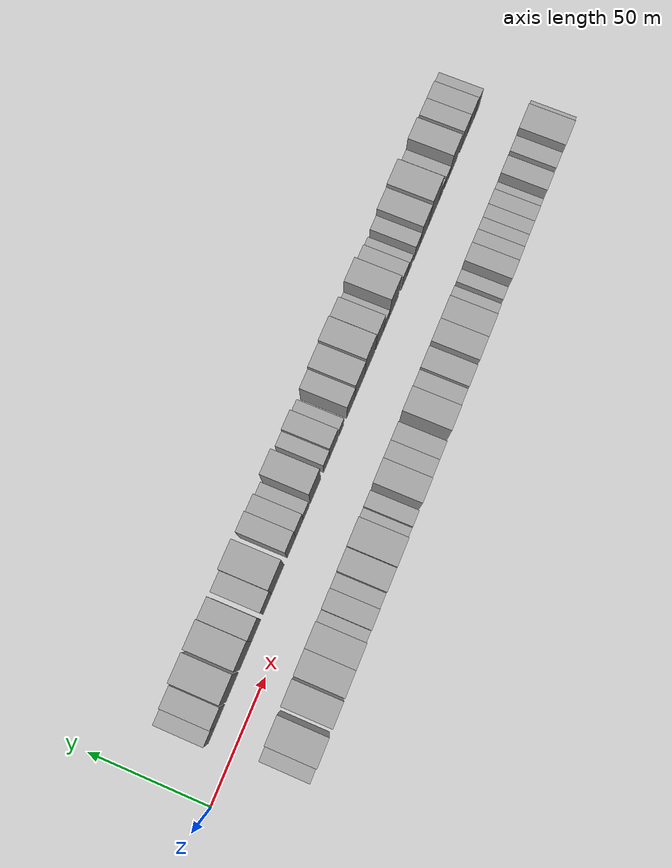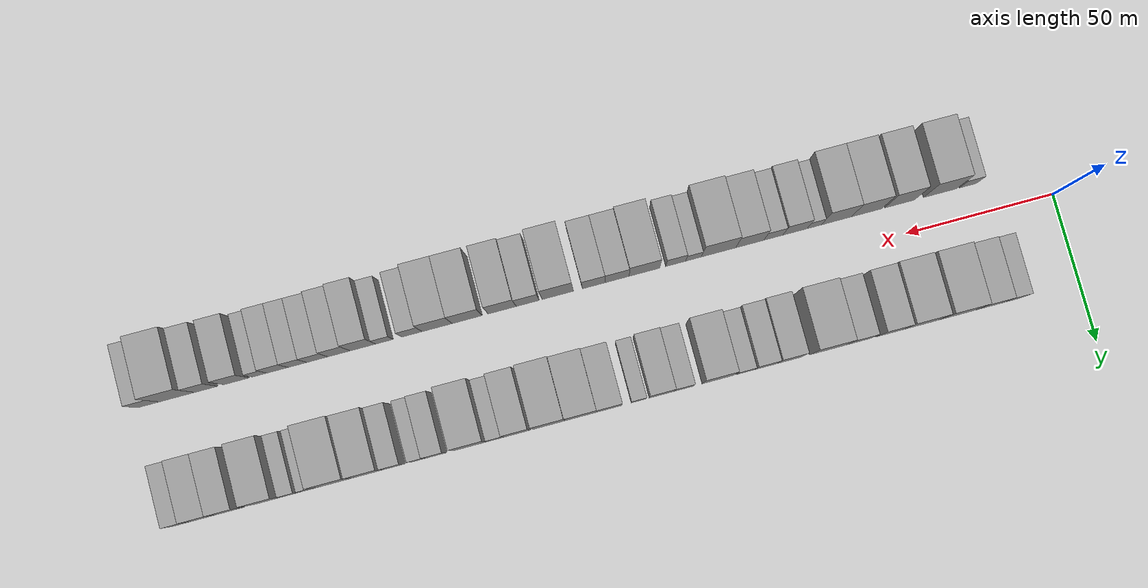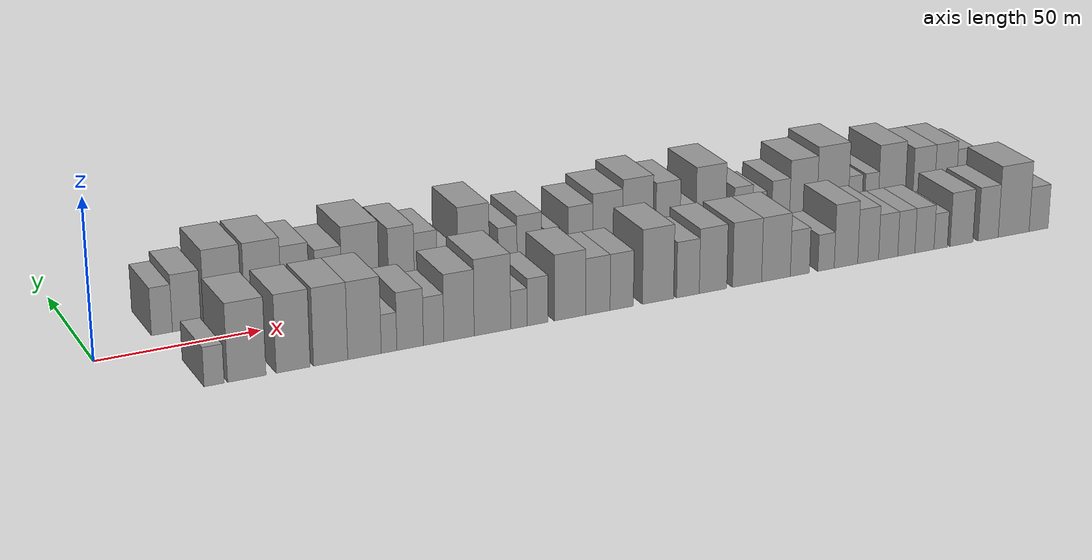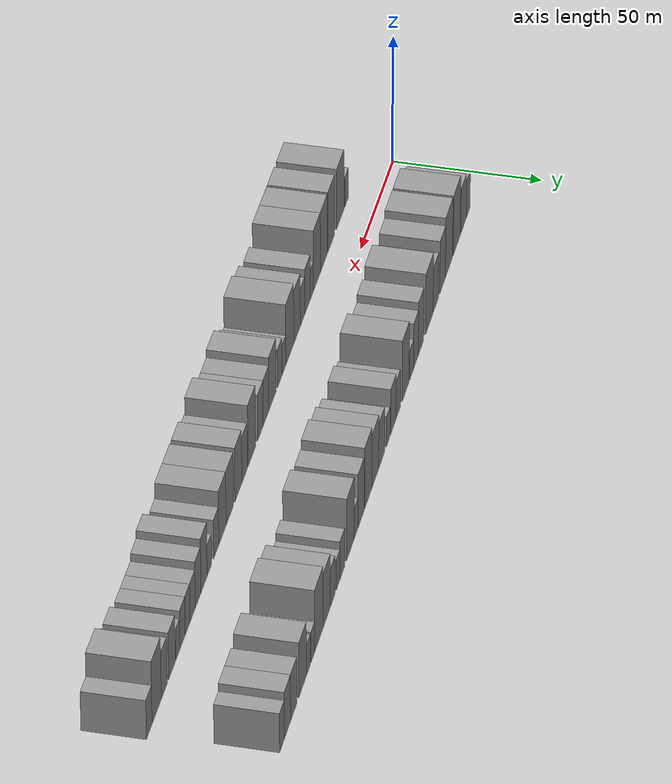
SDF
<sdf version="1.6">
 <world name="default">
  <scene>
   <sky><clouds><speed>12</speed></clouds></sky>
   <ambient>0.4 0.4 0.4 1</ambient>
   <background>0.7 0.7 0.7 1</background>
   <shadows>1</shadows>
  </scene>
  <gravity>0 0 -9.8066</gravity>
  <magnetic_field>6e-06 2.3e-05 -4.2e-05</magnetic_field>
  <physics default="0" name="default_physics" type="ode">
   <ode>
    <solver>
     <type>quick</type>
     <iters>10</iters>
     <sor>1.0</sor>
     <use_dynamic_moi_rescaling>0</use_dynamic_moi_rescaling>
    </solver>
    <constraints>
     <cfm>0</cfm>
     <erp>0.2</erp>
     <contact_max_correcting_vel>100</contact_max_correcting_vel>
     <contact_surface_layer>0.001</contact_surface_layer>
    </constraints>
   </ode>
   <max_step_size>0.004</max_step_size>
   <real_time_factor>1</real_time_factor>
   <real_time_update_rate>250</real_time_update_rate>
  </physics>
  <light name="sun" type="directional">
   <pose>0 0 10 0 0 0</pose>
   <diffuse>0.8 0.8 0.8 1</diffuse>
   <specular>0.2 0.2 0.2 1</specular>
   <attenuation>
    <range>1000</range>
    <constant>0.9</constant>
    <linear>0.01</linear>
    <quadratic>0.001</quadratic>
   </attenuation>
   <direction>-0.5 0.1 -0.9</direction>
  </light>
  <model name="building_1">
   <static>1</static>
   <pose>23.1855 20.0000 0 0.000000 0.000000 1.570796</pose>
   <link name="link">
    <pose>0 0 7.50 0 0 0</pose>
    <collision name="collision"><geometry><box><size>20.0000 6.3709 15.0000</size></box></geometry></collision>
    <visual name="visual">
     <cast_shadows>0</cast_shadows>
     <geometry><box><size>20.0000 6.3709 15.0000</size></box></geometry>
     <material>
      <script>
       <uri>model://grey_wall/materials/scripts</uri>
       <uri>model://grey_wall/materials/textures</uri>
       <name>vrc/grey_wall</name>
      </script>
     </material>
    </visual>
   </link>
  </model>
  <model name="building_2">
   <static>1</static>
   <pose>30.7351 20.0000 0 0.000000 0.000000 1.570796</pose>
   <link name="link">
    <pose>0 0 9.00 0 0 0</pose>
    <collision name="collision"><geometry><box><size>20.0000 8.7284 18.0000</size></box></geometry></collision>
    <visual name="visual">
     <cast_shadows>0</cast_shadows>
     <geometry><box><size>20.0000 8.7284 18.0000</size></box></geometry>
     <material>
      <script>
       <uri>model://grey_wall/materials/scripts</uri>
       <uri>model://grey_wall/materials/textures</uri>
       <name>vrc/grey_wall</name>
      </script>
     </material>
    </visual>
   </link>
  </model>
  <model name="building_3">
   <static>1</static>
   <pose>41.8716 20.0000 0 0.000000 0.000000 1.570796</pose>
   <link name="link">
    <pose>0 0 12.00 0 0 0</pose>
    <collision name="collision"><geometry><box><size>20.0000 11.5447 24.0000</size></box></geometry></collision>
    <visual name="visual">
     <cast_shadows>0</cast_shadows>
     <geometry><box><size>20.0000 11.5447 24.0000</size></box></geometry>
     <material>
      <script>
       <uri>model://grey_wall/materials/scripts</uri>
       <uri>model://grey_wall/materials/textures</uri>
       <name>vrc/grey_wall</name>
      </script>
     </material>
    </visual>
   </link>
  </model>
  <model name="building_4">
   <static>1</static>
   <pose>54.3600 20.0000 0 0.000000 0.000000 1.570796</pose>
   <link name="link">
    <pose>0 0 12.00 0 0 0</pose>
    <collision name="collision"><geometry><box><size>20.0000 11.4320 24.0000</size></box></geometry></collision>
    <visual name="visual">
     <cast_shadows>0</cast_shadows>
     <geometry><box><size>20.0000 11.4320 24.0000</size></box></geometry>
     <material>
      <script>
       <uri>model://grey_wall/materials/scripts</uri>
       <uri>model://grey_wall/materials/textures</uri>
       <name>vrc/grey_wall</name>
      </script>
     </material>
    </visual>
   </link>
  </model>
  <model name="building_5">
   <static>1</static>
   <pose>64.4766 20.0000 0 0.000000 0.000000 1.570796</pose>
   <link name="link">
    <pose>0 0 10.50 0 0 0</pose>
    <collision name="collision"><geometry><box><size>20.0000 8.8012 21.0000</size></box></geometry></collision>
    <visual name="visual">
     <cast_shadows>0</cast_shadows>
     <geometry><box><size>20.0000 8.8012 21.0000</size></box></geometry>
     <material>
      <script>
       <uri>model://grey_wall/materials/scripts</uri>
       <uri>model://grey_wall/materials/textures</uri>
       <name>vrc/grey_wall</name>
      </script>
     </material>
    </visual>
   </link>
  </model>
  <model name="building_6">
   <static>1</static>
   <pose>75.0676 20.0000 0 0.000000 0.000000 1.570796</pose>
   <link name="link">
    <pose>0 0 9.00 0 0 0</pose>
    <collision name="collision"><geometry><box><size>20.0000 8.3809 18.0000</size></box></geometry></collision>
    <visual name="visual">
     <cast_shadows>0</cast_shadows>
     <geometry><box><size>20.0000 8.3809 18.0000</size></box></geometry>
     <material>
      <script>
       <uri>model://grey_wall/materials/scripts</uri>
       <uri>model://grey_wall/materials/textures</uri>
       <name>vrc/grey_wall</name>
      </script>
     </material>
    </visual>
   </link>
  </model>
  <model name="building_7">
   <static>1</static>
   <pose>85.2413 20.0000 0 0.000000 0.000000 1.570796</pose>
   <link name="link">
    <pose>0 0 12.00 0 0 0</pose>
    <collision name="collision"><geometry><box><size>20.0000 11.9665 24.0000</size></box></geometry></collision>
    <visual name="visual">
     <cast_shadows>0</cast_shadows>
     <geometry><box><size>20.0000 11.9665 24.0000</size></box></geometry>
     <material>
      <script>
       <uri>model://grey_wall/materials/scripts</uri>
       <uri>model://grey_wall/materials/textures</uri>
       <name>vrc/grey_wall</name>
      </script>
     </material>
    </visual>
   </link>
  </model>
  <model name="building_8">
   <static>1</static>
   <pose>98.4299 20.0000 0 0.000000 0.000000 1.570796</pose>
   <link name="link">
    <pose>0 0 10.50 0 0 0</pose>
    <collision name="collision"><geometry><box><size>20.0000 8.4107 21.0000</size></box></geometry></collision>
    <visual name="visual">
     <cast_shadows>0</cast_shadows>
     <geometry><box><size>20.0000 8.4107 21.0000</size></box></geometry>
     <material>
      <script>
       <uri>model://grey_wall/materials/scripts</uri>
       <uri>model://grey_wall/materials/textures</uri>
       <name>vrc/grey_wall</name>
      </script>
     </material>
    </visual>
   </link>
  </model>
  <model name="building_9">
   <static>1</static>
   <pose>106.3608 20.0000 0 0.000000 0.000000 1.570796</pose>
   <link name="link">
    <pose>0 0 9.00 0 0 0</pose>
    <collision name="collision"><geometry><box><size>20.0000 7.4511 18.0000</size></box></geometry></collision>
    <visual name="visual">
     <cast_shadows>0</cast_shadows>
     <geometry><box><size>20.0000 7.4511 18.0000</size></box></geometry>
     <material>
      <script>
       <uri>model://grey_wall/materials/scripts</uri>
       <uri>model://grey_wall/materials/textures</uri>
       <name>vrc/grey_wall</name>
      </script>
     </material>
    </visual>
   </link>
  </model>
  <model name="building_10">
   <static>1</static>
   <pose>113.0277 20.0000 0 0.000000 0.000000 1.570796</pose>
   <link name="link">
    <pose>0 0 6.00 0 0 0</pose>
    <collision name="collision"><geometry><box><size>20.0000 5.8827 12.0000</size></box></geometry></collision>
    <visual name="visual">
     <cast_shadows>0</cast_shadows>
     <geometry><box><size>20.0000 5.8827 12.0000</size></box></geometry>
     <material>
      <script>
       <uri>model://grey_wall/materials/scripts</uri>
       <uri>model://grey_wall/materials/textures</uri>
       <name>vrc/grey_wall</name>
      </script>
     </material>
    </visual>
   </link>
  </model>
  <model name="building_11">
   <static>1</static>
   <pose>122.2108 20.0000 0 0.000000 0.000000 1.570796</pose>
   <link name="link">
    <pose>0 0 12.00 0 0 0</pose>
    <collision name="collision"><geometry><box><size>20.0000 10.4834 24.0000</size></box></geometry></collision>
    <visual name="visual">
     <cast_shadows>0</cast_shadows>
     <geometry><box><size>20.0000 10.4834 24.0000</size></box></geometry>
     <material>
      <script>
       <uri>model://grey_wall/materials/scripts</uri>
       <uri>model://grey_wall/materials/textures</uri>
       <name>vrc/grey_wall</name>
      </script>
     </material>
    </visual>
   </link>
  </model>
  <model name="building_12">
   <static>1</static>
   <pose>133.6189 20.0000 0 0.000000 0.000000 1.570796</pose>
   <link name="link">
    <pose>0 0 7.50 0 0 0</pose>
    <collision name="collision"><geometry><box><size>20.0000 6.3327 15.0000</size></box></geometry></collision>
    <visual name="visual">
     <cast_shadows>0</cast_shadows>
     <geometry><box><size>20.0000 6.3327 15.0000</size></box></geometry>
     <material>
      <script>
       <uri>model://grey_wall/materials/scripts</uri>
       <uri>model://grey_wall/materials/textures</uri>
       <name>vrc/grey_wall</name>
      </script>
     </material>
    </visual>
   </link>
  </model>
  <model name="building_13">
   <static>1</static>
   <pose>140.9818 20.0000 0 0.000000 0.000000 1.570796</pose>
   <link name="link">
    <pose>0 0 9.00 0 0 0</pose>
    <collision name="collision"><geometry><box><size>20.0000 8.3931 18.0000</size></box></geometry></collision>
    <visual name="visual">
     <cast_shadows>0</cast_shadows>
     <geometry><box><size>20.0000 8.3931 18.0000</size></box></geometry>
     <material>
      <script>
       <uri>model://grey_wall/materials/scripts</uri>
       <uri>model://grey_wall/materials/textures</uri>
       <name>vrc/grey_wall</name>
      </script>
     </material>
    </visual>
   </link>
  </model>
  <model name="building_14">
   <static>1</static>
   <pose>148.6953 20.0000 0 0.000000 0.000000 1.570796</pose>
   <link name="link">
    <pose>0 0 6.00 0 0 0</pose>
    <collision name="collision"><geometry><box><size>20.0000 5.0339 12.0000</size></box></geometry></collision>
    <visual name="visual">
     <cast_shadows>0</cast_shadows>
     <geometry><box><size>20.0000 5.0339 12.0000</size></box></geometry>
     <material>
      <script>
       <uri>model://grey_wall/materials/scripts</uri>
       <uri>model://grey_wall/materials/textures</uri>
       <name>vrc/grey_wall</name>
      </script>
     </material>
    </visual>
   </link>
  </model>
  <model name="building_15">
   <static>1</static>
   <pose>158.4189 20.0000 0 0.000000 0.000000 1.570796</pose>
   <link name="link">
    <pose>0 0 9.00 0 0 0</pose>
    <collision name="collision"><geometry><box><size>20.0000 8.4132 18.0000</size></box></geometry></collision>
    <visual name="visual">
     <cast_shadows>0</cast_shadows>
     <geometry><box><size>20.0000 8.4132 18.0000</size></box></geometry>
     <material>
      <script>
       <uri>model://grey_wall/materials/scripts</uri>
       <uri>model://grey_wall/materials/textures</uri>
       <name>vrc/grey_wall</name>
      </script>
     </material>
    </visual>
   </link>
  </model>
  <model name="building_16">
   <static>1</static>
   <pose>167.8705 20.0000 0 0.000000 0.000000 1.570796</pose>
   <link name="link">
    <pose>0 0 10.50 0 0 0</pose>
    <collision name="collision"><geometry><box><size>20.0000 10.4900 21.0000</size></box></geometry></collision>
    <visual name="visual">
     <cast_shadows>0</cast_shadows>
     <geometry><box><size>20.0000 10.4900 21.0000</size></box></geometry>
     <material>
      <script>
       <uri>model://grey_wall/materials/scripts</uri>
       <uri>model://grey_wall/materials/textures</uri>
       <name>vrc/grey_wall</name>
      </script>
     </material>
    </visual>
   </link>
  </model>
  <model name="building_17">
   <static>1</static>
   <pose>178.4497 20.0000 0 0.000000 0.000000 1.570796</pose>
   <link name="link">
    <pose>0 0 12.00 0 0 0</pose>
    <collision name="collision"><geometry><box><size>20.0000 10.6684 24.0000</size></box></geometry></collision>
    <visual name="visual">
     <cast_shadows>0</cast_shadows>
     <geometry><box><size>20.0000 10.6684 24.0000</size></box></geometry>
     <material>
      <script>
       <uri>model://grey_wall/materials/scripts</uri>
       <uri>model://grey_wall/materials/textures</uri>
       <name>vrc/grey_wall</name>
      </script>
     </material>
    </visual>
   </link>
  </model>
  <model name="building_18">
   <static>1</static>
   <pose>189.0819 20.0000 0 0.000000 0.000000 1.570796</pose>
   <link name="link">
    <pose>0 0 10.50 0 0 0</pose>
    <collision name="collision"><geometry><box><size>20.0000 8.5960 21.0000</size></box></geometry></collision>
    <visual name="visual">
     <cast_shadows>0</cast_shadows>
     <geometry><box><size>20.0000 8.5960 21.0000</size></box></geometry>
     <material>
      <script>
       <uri>model://grey_wall/materials/scripts</uri>
       <uri>model://grey_wall/materials/textures</uri>
       <name>vrc/grey_wall</name>
      </script>
     </material>
    </visual>
   </link>
  </model>
  <model name="building_19">
   <static>1</static>
   <pose>196.1919 20.0000 0 0.000000 0.000000 1.570796</pose>
   <link name="link">
    <pose>0 0 6.00 0 0 0</pose>
    <collision name="collision"><geometry><box><size>20.0000 5.6239 12.0000</size></box></geometry></collision>
    <visual name="visual">
     <cast_shadows>0</cast_shadows>
     <geometry><box><size>20.0000 5.6239 12.0000</size></box></geometry>
     <material>
      <script>
       <uri>model://grey_wall/materials/scripts</uri>
       <uri>model://grey_wall/materials/textures</uri>
       <name>vrc/grey_wall</name>
      </script>
     </material>
    </visual>
   </link>
  </model>
  <model name="building_20">
   <static>1</static>
   <pose>204.3961 20.0000 0 0.000000 0.000000 1.570796</pose>
   <link name="link">
    <pose>0 0 12.00 0 0 0</pose>
    <collision name="collision"><geometry><box><size>20.0000 10.7846 24.0000</size></box></geometry></collision>
    <visual name="visual">
     <cast_shadows>0</cast_shadows>
     <geometry><box><size>20.0000 10.7846 24.0000</size></box></geometry>
     <material>
      <script>
       <uri>model://grey_wall/materials/scripts</uri>
       <uri>model://grey_wall/materials/textures</uri>
       <name>vrc/grey_wall</name>
      </script>
     </material>
    </visual>
   </link>
  </model>
  <model name="building_21">
   <static>1</static>
   <pose>216.2047 20.0000 0 0.000000 0.000000 1.570796</pose>
   <link name="link">
    <pose>0 0 7.50 0 0 0</pose>
    <collision name="collision"><geometry><box><size>20.0000 6.8326 15.0000</size></box></geometry></collision>
    <visual name="visual">
     <cast_shadows>0</cast_shadows>
     <geometry><box><size>20.0000 6.8326 15.0000</size></box></geometry>
     <material>
      <script>
       <uri>model://grey_wall/materials/scripts</uri>
       <uri>model://grey_wall/materials/textures</uri>
       <name>vrc/grey_wall</name>
      </script>
     </material>
    </visual>
   </link>
  </model>
  <model name="building_22">
   <static>1</static>
   <pose>222.1223 20.0000 0 0.000000 0.000000 1.570796</pose>
   <link name="link">
    <pose>0 0 6.00 0 0 0</pose>
    <collision name="collision"><geometry><box><size>20.0000 5.0026 12.0000</size></box></geometry></collision>
    <visual name="visual">
     <cast_shadows>0</cast_shadows>
     <geometry><box><size>20.0000 5.0026 12.0000</size></box></geometry>
     <material>
      <script>
       <uri>model://grey_wall/materials/scripts</uri>
       <uri>model://grey_wall/materials/textures</uri>
       <name>vrc/grey_wall</name>
      </script>
     </material>
    </visual>
   </link>
  </model>
  <model name="building_23">
   <static>1</static>
   <pose>229.9426 20.0000 0 0.000000 0.000000 1.570796</pose>
   <link name="link">
    <pose>0 0 7.50 0 0 0</pose>
    <collision name="collision"><geometry><box><size>20.0000 6.6379 15.0000</size></box></geometry></collision>
    <visual name="visual">
     <cast_shadows>0</cast_shadows>
     <geometry><box><size>20.0000 6.6379 15.0000</size></box></geometry>
     <material>
      <script>
       <uri>model://grey_wall/materials/scripts</uri>
       <uri>model://grey_wall/materials/textures</uri>
       <name>vrc/grey_wall</name>
      </script>
     </material>
    </visual>
   </link>
  </model>
  <model name="building_24">
   <static>1</static>
   <pose>238.3424 20.0000 0 0.000000 0.000000 1.570796</pose>
   <link name="link">
    <pose>0 0 10.50 0 0 0</pose>
    <collision name="collision"><geometry><box><size>20.0000 10.1618 21.0000</size></box></geometry></collision>
    <visual name="visual">
     <cast_shadows>0</cast_shadows>
     <geometry><box><size>20.0000 10.1618 21.0000</size></box></geometry>
     <material>
      <script>
       <uri>model://grey_wall/materials/scripts</uri>
       <uri>model://grey_wall/materials/textures</uri>
       <name>vrc/grey_wall</name>
      </script>
     </material>
    </visual>
   </link>
  </model>
  <model name="building_25">
   <static>1</static>
   <pose>249.3324 20.0000 0 0.000000 0.000000 1.570796</pose>
   <link name="link">
    <pose>0 0 12.00 0 0 0</pose>
    <collision name="collision"><geometry><box><size>20.0000 11.8182 24.0000</size></box></geometry></collision>
    <visual name="visual">
     <cast_shadows>0</cast_shadows>
     <geometry><box><size>20.0000 11.8182 24.0000</size></box></geometry>
     <material>
      <script>
       <uri>model://grey_wall/materials/scripts</uri>
       <uri>model://grey_wall/materials/textures</uri>
       <name>vrc/grey_wall</name>
      </script>
     </material>
    </visual>
   </link>
  </model>
  <model name="building_26">
   <static>1</static>
   <pose>257.8431 20.0000 0 0.000000 0.000000 1.570796</pose>
   <link name="link">
    <pose>0 0 6.00 0 0 0</pose>
    <collision name="collision"><geometry><box><size>20.0000 5.2031 12.0000</size></box></geometry></collision>
    <visual name="visual">
     <cast_shadows>0</cast_shadows>
     <geometry><box><size>20.0000 5.2031 12.0000</size></box></geometry>
     <material>
      <script>
       <uri>model://grey_wall/materials/scripts</uri>
       <uri>model://grey_wall/materials/textures</uri>
       <name>vrc/grey_wall</name>
      </script>
     </material>
    </visual>
   </link>
  </model>
  <model name="building_27">
   <static>1</static>
   <pose>264.0387 20.0000 0 0.000000 0.000000 1.570796</pose>
   <link name="link">
    <pose>0 0 6.00 0 0 0</pose>
    <collision name="collision"><geometry><box><size>20.0000 5.1881 12.0000</size></box></geometry></collision>
    <visual name="visual">
     <cast_shadows>0</cast_shadows>
     <geometry><box><size>20.0000 5.1881 12.0000</size></box></geometry>
     <material>
      <script>
       <uri>model://grey_wall/materials/scripts</uri>
       <uri>model://grey_wall/materials/textures</uri>
       <name>vrc/grey_wall</name>
      </script>
     </material>
    </visual>
   </link>
  </model>
  <model name="building_28">
   <static>1</static>
   <pose>271.7900 20.0000 0 0.000000 0.000000 1.570796</pose>
   <link name="link">
    <pose>0 0 10.50 0 0 0</pose>
    <collision name="collision"><geometry><box><size>20.0000 10.3144 21.0000</size></box></geometry></collision>
    <visual name="visual">
     <cast_shadows>0</cast_shadows>
     <geometry><box><size>20.0000 10.3144 21.0000</size></box></geometry>
     <material>
      <script>
       <uri>model://grey_wall/materials/scripts</uri>
       <uri>model://grey_wall/materials/textures</uri>
       <name>vrc/grey_wall</name>
      </script>
     </material>
    </visual>
   </link>
  </model>
  <model name="building_29">
   <static>1</static>
   <pose>284.1666 20.0000 0 0.000000 0.000000 1.570796</pose>
   <link name="link">
    <pose>0 0 9.00 0 0 0</pose>
    <collision name="collision"><geometry><box><size>20.0000 8.4388 18.0000</size></box></geometry></collision>
    <visual name="visual">
     <cast_shadows>0</cast_shadows>
     <geometry><box><size>20.0000 8.4388 18.0000</size></box></geometry>
     <material>
      <script>
       <uri>model://grey_wall/materials/scripts</uri>
       <uri>model://grey_wall/materials/textures</uri>
       <name>vrc/grey_wall</name>
      </script>
     </material>
    </visual>
   </link>
  </model>
  <model name="building_30">
   <static>1</static>
   <pose>292.6248 20.0000 0 0.000000 0.000000 1.570796</pose>
   <link name="link">
    <pose>0 0 9.00 0 0 0</pose>
    <collision name="collision"><geometry><box><size>20.0000 8.4776 18.0000</size></box></geometry></collision>
    <visual name="visual">
     <cast_shadows>0</cast_shadows>
     <geometry><box><size>20.0000 8.4776 18.0000</size></box></geometry>
     <material>
      <script>
       <uri>model://grey_wall/materials/scripts</uri>
       <uri>model://grey_wall/materials/textures</uri>
       <name>vrc/grey_wall</name>
      </script>
     </material>
    </visual>
   </link>
  </model>
  <model name="building_31">
   <static>1</static>
   <pose>300.0310 20.0000 0 0.000000 0.000000 1.570796</pose>
   <link name="link">
    <pose>0 0 7.50 0 0 0</pose>
    <collision name="collision"><geometry><box><size>20.0000 6.3350 15.0000</size></box></geometry></collision>
    <visual name="visual">
     <cast_shadows>0</cast_shadows>
     <geometry><box><size>20.0000 6.3350 15.0000</size></box></geometry>
     <material>
      <script>
       <uri>model://grey_wall/materials/scripts</uri>
       <uri>model://grey_wall/materials/textures</uri>
       <name>vrc/grey_wall</name>
      </script>
     </material>
    </visual>
   </link>
  </model>
  <model name="building_32">
   <static>1</static>
   <pose>25.9461 -20.0000 0 0.000000 0.000000 1.570796</pose>
   <link name="link">
    <pose>0 0 6.00 0 0 0</pose>
    <collision name="collision"><geometry><box><size>20.0000 5.8921 12.0000</size></box></geometry></collision>
    <visual name="visual">
     <cast_shadows>0</cast_shadows>
     <geometry><box><size>20.0000 5.8921 12.0000</size></box></geometry>
     <material>
      <script>
       <uri>model://grey_wall/materials/scripts</uri>
       <uri>model://grey_wall/materials/textures</uri>
       <name>vrc/grey_wall</name>
      </script>
     </material>
    </visual>
   </link>
  </model>
  <model name="building_33">
   <static>1</static>
   <pose>35.5581 -20.0000 0 0.000000 0.000000 1.570796</pose>
   <link name="link">
    <pose>0 0 12.00 0 0 0</pose>
    <collision name="collision"><geometry><box><size>20.0000 11.3319 24.0000</size></box></geometry></collision>
    <visual name="visual">
     <cast_shadows>0</cast_shadows>
     <geometry><box><size>20.0000 11.3319 24.0000</size></box></geometry>
     <material>
      <script>
       <uri>model://grey_wall/materials/scripts</uri>
       <uri>model://grey_wall/materials/textures</uri>
       <name>vrc/grey_wall</name>
      </script>
     </material>
    </visual>
   </link>
  </model>
  <model name="building_34">
   <static>1</static>
   <pose>49.3231 -20.0000 0 0.000000 0.000000 1.570796</pose>
   <link name="link">
    <pose>0 0 12.00 0 0 0</pose>
    <collision name="collision"><geometry><box><size>20.0000 10.1981 24.0000</size></box></geometry></collision>
    <visual name="visual">
     <cast_shadows>0</cast_shadows>
     <geometry><box><size>20.0000 10.1981 24.0000</size></box></geometry>
     <material>
      <script>
       <uri>model://grey_wall/materials/scripts</uri>
       <uri>model://grey_wall/materials/textures</uri>
       <name>vrc/grey_wall</name>
      </script>
     </material>
    </visual>
   </link>
  </model>
  <model name="building_35">
   <static>1</static>
   <pose>60.6073 -20.0000 0 0.000000 0.000000 1.570796</pose>
   <link name="link">
    <pose>0 0 12.00 0 0 0</pose>
    <collision name="collision"><geometry><box><size>20.0000 10.3703 24.0000</size></box></geometry></collision>
    <visual name="visual">
     <cast_shadows>0</cast_shadows>
     <geometry><box><size>20.0000 10.3703 24.0000</size></box></geometry>
     <material>
      <script>
       <uri>model://grey_wall/materials/scripts</uri>
       <uri>model://grey_wall/materials/textures</uri>
       <name>vrc/grey_wall</name>
      </script>
     </material>
    </visual>
   </link>
  </model>
  <model name="building_36">
   <static>1</static>
   <pose>70.9142 -20.0000 0 0.000000 0.000000 1.570796</pose>
   <link name="link">
    <pose>0 0 12.00 0 0 0</pose>
    <collision name="collision"><geometry><box><size>20.0000 10.2434 24.0000</size></box></geometry></collision>
    <visual name="visual">
     <cast_shadows>0</cast_shadows>
     <geometry><box><size>20.0000 10.2434 24.0000</size></box></geometry>
     <material>
      <script>
       <uri>model://grey_wall/materials/scripts</uri>
       <uri>model://grey_wall/materials/textures</uri>
       <name>vrc/grey_wall</name>
      </script>
     </material>
    </visual>
   </link>
  </model>
  <model name="building_37">
   <static>1</static>
   <pose>78.4433 -20.0000 0 0.000000 0.000000 1.570796</pose>
   <link name="link">
    <pose>0 0 6.00 0 0 0</pose>
    <collision name="collision"><geometry><box><size>20.0000 4.8148 12.0000</size></box></geometry></collision>
    <visual name="visual">
     <cast_shadows>0</cast_shadows>
     <geometry><box><size>20.0000 4.8148 12.0000</size></box></geometry>
     <material>
      <script>
       <uri>model://grey_wall/materials/scripts</uri>
       <uri>model://grey_wall/materials/textures</uri>
       <name>vrc/grey_wall</name>
      </script>
     </material>
    </visual>
   </link>
  </model>
  <model name="building_38">
   <static>1</static>
   <pose>84.9782 -20.0000 0 0.000000 0.000000 1.570796</pose>
   <link name="link">
    <pose>0 0 9.00 0 0 0</pose>
    <collision name="collision"><geometry><box><size>20.0000 8.2550 18.0000</size></box></geometry></collision>
    <visual name="visual">
     <cast_shadows>0</cast_shadows>
     <geometry><box><size>20.0000 8.2550 18.0000</size></box></geometry>
     <material>
      <script>
       <uri>model://grey_wall/materials/scripts</uri>
       <uri>model://grey_wall/materials/textures</uri>
       <name>vrc/grey_wall</name>
      </script>
     </material>
    </visual>
   </link>
  </model>
  <model name="building_39">
   <static>1</static>
   <pose>92.3051 -20.0000 0 0.000000 0.000000 1.570796</pose>
   <link name="link">
    <pose>0 0 7.50 0 0 0</pose>
    <collision name="collision"><geometry><box><size>20.0000 6.3988 15.0000</size></box></geometry></collision>
    <visual name="visual">
     <cast_shadows>0</cast_shadows>
     <geometry><box><size>20.0000 6.3988 15.0000</size></box></geometry>
     <material>
      <script>
       <uri>model://grey_wall/materials/scripts</uri>
       <uri>model://grey_wall/materials/textures</uri>
       <name>vrc/grey_wall</name>
      </script>
     </material>
    </visual>
   </link>
  </model>
  <model name="building_40">
   <static>1</static>
   <pose>100.2814 -20.0000 0 0.000000 0.000000 1.570796</pose>
   <link name="link">
    <pose>0 0 10.50 0 0 0</pose>
    <collision name="collision"><geometry><box><size>20.0000 9.5539 21.0000</size></box></geometry></collision>
    <visual name="visual">
     <cast_shadows>0</cast_shadows>
     <geometry><box><size>20.0000 9.5539 21.0000</size></box></geometry>
     <material>
      <script>
       <uri>model://grey_wall/materials/scripts</uri>
       <uri>model://grey_wall/materials/textures</uri>
       <name>vrc/grey_wall</name>
      </script>
     </material>
    </visual>
   </link>
  </model>
  <model name="building_41">
   <static>1</static>
   <pose>110.8778 -20.0000 0 0.000000 0.000000 1.570796</pose>
   <link name="link">
    <pose>0 0 12.00 0 0 0</pose>
    <collision name="collision"><geometry><box><size>20.0000 11.6388 24.0000</size></box></geometry></collision>
    <visual name="visual">
     <cast_shadows>0</cast_shadows>
     <geometry><box><size>20.0000 11.6388 24.0000</size></box></geometry>
     <material>
      <script>
       <uri>model://grey_wall/materials/scripts</uri>
       <uri>model://grey_wall/materials/textures</uri>
       <name>vrc/grey_wall</name>
      </script>
     </material>
    </visual>
   </link>
  </model>
  <model name="building_42">
   <static>1</static>
   <pose>119.3610 -20.0000 0 0.000000 0.000000 1.570796</pose>
   <link name="link">
    <pose>0 0 6.00 0 0 0</pose>
    <collision name="collision"><geometry><box><size>20.0000 5.3276 12.0000</size></box></geometry></collision>
    <visual name="visual">
     <cast_shadows>0</cast_shadows>
     <geometry><box><size>20.0000 5.3276 12.0000</size></box></geometry>
     <material>
      <script>
       <uri>model://grey_wall/materials/scripts</uri>
       <uri>model://grey_wall/materials/textures</uri>
       <name>vrc/grey_wall</name>
      </script>
     </material>
    </visual>
   </link>
  </model>
  <model name="building_43">
   <static>1</static>
   <pose>125.3902 -20.0000 0 0.000000 0.000000 1.570796</pose>
   <link name="link">
    <pose>0 0 7.50 0 0 0</pose>
    <collision name="collision"><geometry><box><size>20.0000 6.7308 15.0000</size></box></geometry></collision>
    <visual name="visual">
     <cast_shadows>0</cast_shadows>
     <geometry><box><size>20.0000 6.7308 15.0000</size></box></geometry>
     <material>
      <script>
       <uri>model://grey_wall/materials/scripts</uri>
       <uri>model://grey_wall/materials/textures</uri>
       <name>vrc/grey_wall</name>
      </script>
     </material>
    </visual>
   </link>
  </model>
  <model name="building_44">
   <static>1</static>
   <pose>135.9270 -20.0000 0 0.000000 0.000000 1.570796</pose>
   <link name="link">
    <pose>0 0 10.50 0 0 0</pose>
    <collision name="collision"><geometry><box><size>20.0000 10.3427 21.0000</size></box></geometry></collision>
    <visual name="visual">
     <cast_shadows>0</cast_shadows>
     <geometry><box><size>20.0000 10.3427 21.0000</size></box></geometry>
     <material>
      <script>
       <uri>model://grey_wall/materials/scripts</uri>
       <uri>model://grey_wall/materials/textures</uri>
       <name>vrc/grey_wall</name>
      </script>
     </material>
    </visual>
   </link>
  </model>
  <model name="building_45">
   <static>1</static>
   <pose>145.1123 -20.0000 0 0.000000 0.000000 1.570796</pose>
   <link name="link">
    <pose>0 0 9.00 0 0 0</pose>
    <collision name="collision"><geometry><box><size>20.0000 8.0279 18.0000</size></box></geometry></collision>
    <visual name="visual">
     <cast_shadows>0</cast_shadows>
     <geometry><box><size>20.0000 8.0279 18.0000</size></box></geometry>
     <material>
      <script>
       <uri>model://grey_wall/materials/scripts</uri>
       <uri>model://grey_wall/materials/textures</uri>
       <name>vrc/grey_wall</name>
      </script>
     </material>
    </visual>
   </link>
  </model>
  <model name="building_46">
   <static>1</static>
   <pose>153.0049 -20.0000 0 0.000000 0.000000 1.570796</pose>
   <link name="link">
    <pose>0 0 9.00 0 0 0</pose>
    <collision name="collision"><geometry><box><size>20.0000 7.7573 18.0000</size></box></geometry></collision>
    <visual name="visual">
     <cast_shadows>0</cast_shadows>
     <geometry><box><size>20.0000 7.7573 18.0000</size></box></geometry>
     <material>
      <script>
       <uri>model://grey_wall/materials/scripts</uri>
       <uri>model://grey_wall/materials/textures</uri>
       <name>vrc/grey_wall</name>
      </script>
     </material>
    </visual>
   </link>
  </model>
  <model name="building_47">
   <static>1</static>
   <pose>165.1466 -20.0000 0 0.000000 0.000000 1.570796</pose>
   <link name="link">
    <pose>0 0 12.00 0 0 0</pose>
    <collision name="collision"><geometry><box><size>20.0000 10.5262 24.0000</size></box></geometry></collision>
    <visual name="visual">
     <cast_shadows>0</cast_shadows>
     <geometry><box><size>20.0000 10.5262 24.0000</size></box></geometry>
     <material>
      <script>
       <uri>model://grey_wall/materials/scripts</uri>
       <uri>model://grey_wall/materials/textures</uri>
       <name>vrc/grey_wall</name>
      </script>
     </material>
    </visual>
   </link>
  </model>
  <model name="building_48">
   <static>1</static>
   <pose>175.2684 -20.0000 0 0.000000 0.000000 1.570796</pose>
   <link name="link">
    <pose>0 0 9.00 0 0 0</pose>
    <collision name="collision"><geometry><box><size>20.0000 7.7175 18.0000</size></box></geometry></collision>
    <visual name="visual">
     <cast_shadows>0</cast_shadows>
     <geometry><box><size>20.0000 7.7175 18.0000</size></box></geometry>
     <material>
      <script>
       <uri>model://grey_wall/materials/scripts</uri>
       <uri>model://grey_wall/materials/textures</uri>
       <name>vrc/grey_wall</name>
      </script>
     </material>
    </visual>
   </link>
  </model>
  <model name="building_49">
   <static>1</static>
   <pose>183.8423 -20.0000 0 0.000000 0.000000 1.570796</pose>
   <link name="link">
    <pose>0 0 10.50 0 0 0</pose>
    <collision name="collision"><geometry><box><size>20.0000 9.4302 21.0000</size></box></geometry></collision>
    <visual name="visual">
     <cast_shadows>0</cast_shadows>
     <geometry><box><size>20.0000 9.4302 21.0000</size></box></geometry>
     <material>
      <script>
       <uri>model://grey_wall/materials/scripts</uri>
       <uri>model://grey_wall/materials/textures</uri>
       <name>vrc/grey_wall</name>
      </script>
     </material>
    </visual>
   </link>
  </model>
  <model name="building_50">
   <static>1</static>
   <pose>195.6039 -20.0000 0 0.000000 0.000000 1.570796</pose>
   <link name="link">
    <pose>0 0 10.50 0 0 0</pose>
    <collision name="collision"><geometry><box><size>20.0000 10.0931 21.0000</size></box></geometry></collision>
    <visual name="visual">
     <cast_shadows>0</cast_shadows>
     <geometry><box><size>20.0000 10.0931 21.0000</size></box></geometry>
     <material>
      <script>
       <uri>model://grey_wall/materials/scripts</uri>
       <uri>model://grey_wall/materials/textures</uri>
       <name>vrc/grey_wall</name>
      </script>
     </material>
    </visual>
   </link>
  </model>
  <model name="building_51">
   <static>1</static>
   <pose>205.6937 -20.0000 0 0.000000 0.000000 1.570796</pose>
   <link name="link">
    <pose>0 0 10.50 0 0 0</pose>
    <collision name="collision"><geometry><box><size>20.0000 10.0865 21.0000</size></box></geometry></collision>
    <visual name="visual">
     <cast_shadows>0</cast_shadows>
     <geometry><box><size>20.0000 10.0865 21.0000</size></box></geometry>
     <material>
      <script>
       <uri>model://grey_wall/materials/scripts</uri>
       <uri>model://grey_wall/materials/textures</uri>
       <name>vrc/grey_wall</name>
      </script>
     </material>
    </visual>
   </link>
  </model>
  <model name="building_52">
   <static>1</static>
   <pose>214.1060 -20.0000 0 0.000000 0.000000 1.570796</pose>
   <link name="link">
    <pose>0 0 7.50 0 0 0</pose>
    <collision name="collision"><geometry><box><size>20.0000 6.7381 15.0000</size></box></geometry></collision>
    <visual name="visual">
     <cast_shadows>0</cast_shadows>
     <geometry><box><size>20.0000 6.7381 15.0000</size></box></geometry>
     <material>
      <script>
       <uri>model://grey_wall/materials/scripts</uri>
       <uri>model://grey_wall/materials/textures</uri>
       <name>vrc/grey_wall</name>
      </script>
     </material>
    </visual>
   </link>
  </model>
  <model name="building_53">
   <static>1</static>
   <pose>223.3999 -20.0000 0 0.000000 0.000000 1.570796</pose>
   <link name="link">
    <pose>0 0 6.00 0 0 0</pose>
    <collision name="collision"><geometry><box><size>20.0000 5.8497 12.0000</size></box></geometry></collision>
    <visual name="visual">
     <cast_shadows>0</cast_shadows>
     <geometry><box><size>20.0000 5.8497 12.0000</size></box></geometry>
     <material>
      <script>
       <uri>model://grey_wall/materials/scripts</uri>
       <uri>model://grey_wall/materials/textures</uri>
       <name>vrc/grey_wall</name>
      </script>
     </material>
    </visual>
   </link>
  </model>
  <model name="building_54">
   <static>1</static>
   <pose>230.5412 -20.0000 0 0.000000 0.000000 1.570796</pose>
   <link name="link">
    <pose>0 0 10.50 0 0 0</pose>
    <collision name="collision"><geometry><box><size>20.0000 8.4329 21.0000</size></box></geometry></collision>
    <visual name="visual">
     <cast_shadows>0</cast_shadows>
     <geometry><box><size>20.0000 8.4329 21.0000</size></box></geometry>
     <material>
      <script>
       <uri>model://grey_wall/materials/scripts</uri>
       <uri>model://grey_wall/materials/textures</uri>
       <name>vrc/grey_wall</name>
      </script>
     </material>
    </visual>
   </link>
  </model>
  <model name="building_55">
   <static>1</static>
   <pose>238.5211 -20.0000 0 0.000000 0.000000 1.570796</pose>
   <link name="link">
    <pose>0 0 9.00 0 0 0</pose>
    <collision name="collision"><geometry><box><size>20.0000 7.5270 18.0000</size></box></geometry></collision>
    <visual name="visual">
     <cast_shadows>0</cast_shadows>
     <geometry><box><size>20.0000 7.5270 18.0000</size></box></geometry>
     <material>
      <script>
       <uri>model://grey_wall/materials/scripts</uri>
       <uri>model://grey_wall/materials/textures</uri>
       <name>vrc/grey_wall</name>
      </script>
     </material>
    </visual>
   </link>
  </model>
  <model name="building_56">
   <static>1</static>
   <pose>245.7893 -20.0000 0 0.000000 0.000000 1.570796</pose>
   <link name="link">
    <pose>0 0 7.50 0 0 0</pose>
    <collision name="collision"><geometry><box><size>20.0000 7.0092 15.0000</size></box></geometry></collision>
    <visual name="visual">
     <cast_shadows>0</cast_shadows>
     <geometry><box><size>20.0000 7.0092 15.0000</size></box></geometry>
     <material>
      <script>
       <uri>model://grey_wall/materials/scripts</uri>
       <uri>model://grey_wall/materials/textures</uri>
       <name>vrc/grey_wall</name>
      </script>
     </material>
    </visual>
   </link>
  </model>
  <model name="building_57">
   <static>1</static>
   <pose>252.4367 -20.0000 0 0.000000 0.000000 1.570796</pose>
   <link name="link">
    <pose>0 0 7.50 0 0 0</pose>
    <collision name="collision"><geometry><box><size>20.0000 6.2856 15.0000</size></box></geometry></collision>
    <visual name="visual">
     <cast_shadows>0</cast_shadows>
     <geometry><box><size>20.0000 6.2856 15.0000</size></box></geometry>
     <material>
      <script>
       <uri>model://grey_wall/materials/scripts</uri>
       <uri>model://grey_wall/materials/textures</uri>
       <name>vrc/grey_wall</name>
      </script>
     </material>
    </visual>
   </link>
  </model>
  <model name="building_58">
   <static>1</static>
   <pose>259.1047 -20.0000 0 0.000000 0.000000 1.570796</pose>
   <link name="link">
    <pose>0 0 7.50 0 0 0</pose>
    <collision name="collision"><geometry><box><size>20.0000 7.0504 15.0000</size></box></geometry></collision>
    <visual name="visual">
     <cast_shadows>0</cast_shadows>
     <geometry><box><size>20.0000 7.0504 15.0000</size></box></geometry>
     <material>
      <script>
       <uri>model://grey_wall/materials/scripts</uri>
       <uri>model://grey_wall/materials/textures</uri>
       <name>vrc/grey_wall</name>
      </script>
     </material>
    </visual>
   </link>
  </model>
  <model name="building_59">
   <static>1</static>
   <pose>265.1229 -20.0000 0 0.000000 0.000000 1.570796</pose>
   <link name="link">
    <pose>0 0 6.00 0 0 0</pose>
    <collision name="collision"><geometry><box><size>20.0000 4.9859 12.0000</size></box></geometry></collision>
    <visual name="visual">
     <cast_shadows>0</cast_shadows>
     <geometry><box><size>20.0000 4.9859 12.0000</size></box></geometry>
     <material>
      <script>
       <uri>model://grey_wall/materials/scripts</uri>
       <uri>model://grey_wall/materials/textures</uri>
       <name>vrc/grey_wall</name>
      </script>
     </material>
    </visual>
   </link>
  </model>
  <model name="building_60">
   <static>1</static>
   <pose>272.8675 -20.0000 0 0.000000 0.000000 1.570796</pose>
   <link name="link">
    <pose>0 0 9.00 0 0 0</pose>
    <collision name="collision"><geometry><box><size>20.0000 8.5032 18.0000</size></box></geometry></collision>
    <visual name="visual">
     <cast_shadows>0</cast_shadows>
     <geometry><box><size>20.0000 8.5032 18.0000</size></box></geometry>
     <material>
      <script>
       <uri>model://grey_wall/materials/scripts</uri>
       <uri>model://grey_wall/materials/textures</uri>
       <name>vrc/grey_wall</name>
      </script>
     </material>
    </visual>
   </link>
  </model>
  <model name="building_61">
   <static>1</static>
   <pose>282.8968 -20.0000 0 0.000000 0.000000 1.570796</pose>
   <link name="link">
    <pose>0 0 9.00 0 0 0</pose>
    <collision name="collision"><geometry><box><size>20.0000 7.5554 18.0000</size></box></geometry></collision>
    <visual name="visual">
     <cast_shadows>0</cast_shadows>
     <geometry><box><size>20.0000 7.5554 18.0000</size></box></geometry>
     <material>
      <script>
       <uri>model://grey_wall/materials/scripts</uri>
       <uri>model://grey_wall/materials/textures</uri>
       <name>vrc/grey_wall</name>
      </script>
     </material>
    </visual>
   </link>
  </model>
  <model name="building_62">
   <static>1</static>
   <pose>292.5594 -20.0000 0 0.000000 0.000000 1.570796</pose>
   <link name="link">
    <pose>0 0 12.00 0 0 0</pose>
    <collision name="collision"><geometry><box><size>20.0000 11.7697 24.0000</size></box></geometry></collision>
    <visual name="visual">
     <cast_shadows>0</cast_shadows>
     <geometry><box><size>20.0000 11.7697 24.0000</size></box></geometry>
     <material>
      <script>
       <uri>model://grey_wall/materials/scripts</uri>
       <uri>model://grey_wall/materials/textures</uri>
       <name>vrc/grey_wall</name>
      </script>
     </material>
    </visual>
   </link>
  </model>
  <model name="building_63">
   <static>1</static>
   <pose>302.1029 -20.0000 0 0.000000 0.000000 1.570796</pose>
   <link name="link">
    <pose>0 0 7.50 0 0 0</pose>
    <collision name="collision"><geometry><box><size>20.0000 7.3174 15.0000</size></box></geometry></collision>
    <visual name="visual">
     <cast_shadows>0</cast_shadows>
     <geometry><box><size>20.0000 7.3174 15.0000</size></box></geometry>
     <material>
      <script>
       <uri>model://grey_wall/materials/scripts</uri>
       <uri>model://grey_wall/materials/textures</uri>
       <name>vrc/grey_wall</name>
      </script>
     </material>
    </visual>
   </link>
  </model>
 </world>
</sdf>
